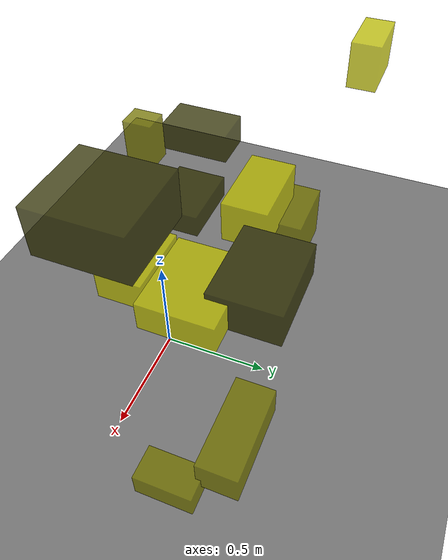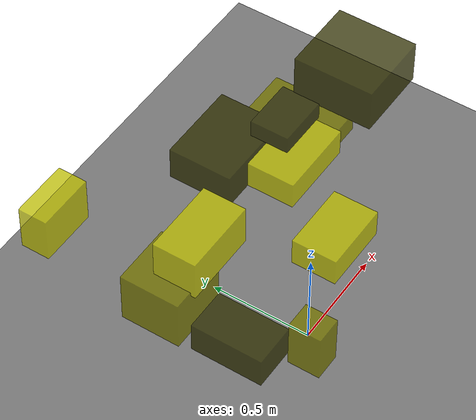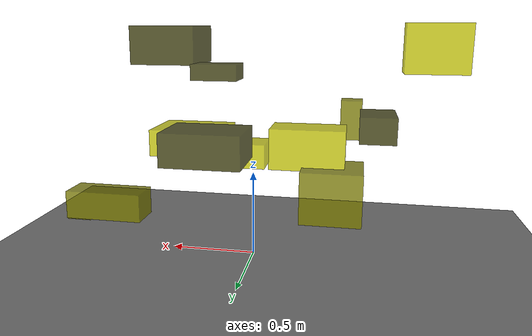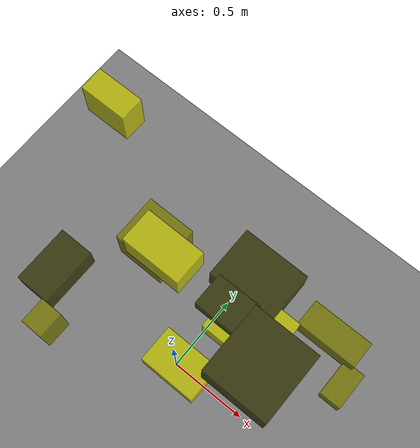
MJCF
<?xml version="1.0"?>
<mujoco model="obstacle_scene">
  <compiler angle="radian" coordinate="local"/>
  <option timestep="0.001" gravity="0 0 -9.81"/>

  <asset>
    <material name="obstacle_mat" rgba="0.8 0.8 0.0 0.8"/>
    <material name="ground_mat" rgba="0.5 0.5 0.5 1"/>
  </asset>

  <worldbody>
    <!-- Ground plane -->
    <geom name="ground" type="plane" size="3 3 0.1" material="ground_mat"/>

    <!-- Obstacles -->
    <body name="obstacle_0" pos="0.446437 0.094425 1.244674">
      <geom name="obs_0" type="box" size="0.175159 0.184864 0.101383" rgba="0.2 0.2 0.0 0.8"/>
    </body>
    <body name="obstacle_1" pos="0.827835 0.447850 0.405526">
      <geom name="obs_1" type="box" size="0.065446 0.113950 0.051054" rgba="0.5 0.5 0.0 0.8"/>
    </body>
    <body name="obstacle_2" pos="-0.894396 0.646891 1.256318">
      <geom name="obs_2" type="box" size="0.130633 0.065036 0.104747" rgba="0.8 0.8 0.0 0.8"/>
    </body>
    <body name="obstacle_3" pos="0.137962 0.530865 0.771604">
      <geom name="obs_3" type="box" size="0.199380 0.153098 0.083326" rgba="0.2 0.2 0.0 0.8"/>
    </body>
    <body name="obstacle_4" pos="0.624568 0.621971 0.481430">
      <geom name="obs_4" type="box" size="0.190717 0.080789 0.067864" rgba="0.5 0.5 0.0 0.8"/>
    </body>
    <body name="obstacle_5" pos="0.096741 -0.053929 0.609712">
      <geom name="obs_5" type="box" size="0.167859 0.108782 0.069803" rgba="0.8 0.8 0.0 0.8"/>
    </body>
    <body name="obstacle_6" pos="-0.700675 -0.097723 0.785854">
      <geom name="obs_6" type="box" size="0.100079 0.166458 0.073895" rgba="0.2 0.2 0.0 0.8"/>
    </body>
    <body name="obstacle_7" pos="-0.472684 0.403904 0.531614">
      <geom name="obs_7" type="box" size="0.151083 0.145274 0.130328" rgba="0.5 0.5 0.0 0.8"/>
    </body>
    <body name="obstacle_8" pos="-0.343857 0.338855 0.745947">
      <geom name="obs_8" type="box" size="0.187285 0.105567 0.102438" rgba="0.8 0.8 0.0 0.8"/>
    </body>
    <body name="obstacle_9" pos="0.152083 0.244137 1.111181">
      <geom name="obs_9" type="box" size="0.121997 0.089833 0.041368" rgba="0.2 0.2 0.0 0.8"/>
    </body>
    <body name="obstacle_10" pos="-0.548854 -0.343381 0.784354">
      <geom name="obs_10" type="box" size="0.063030 0.074246 0.118155" rgba="0.5 0.5 0.0 0.8"/>
    </body>
    <body name="obstacle_11" pos="0.267739 0.309590 0.759764">
      <geom name="obs_11" type="box" size="0.190200 0.160945 0.067064" rgba="0.8 0.8 0.0 0.8"/>
    </body>
  </worldbody>
</mujoco>
